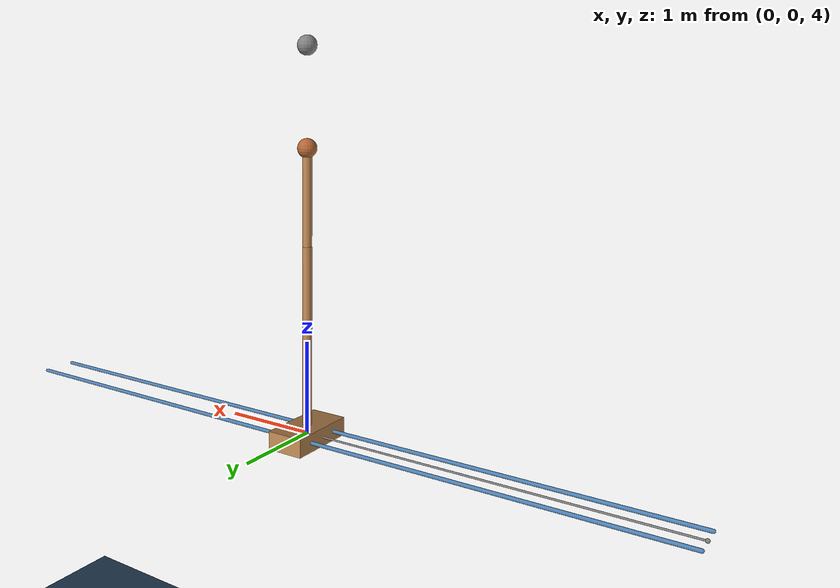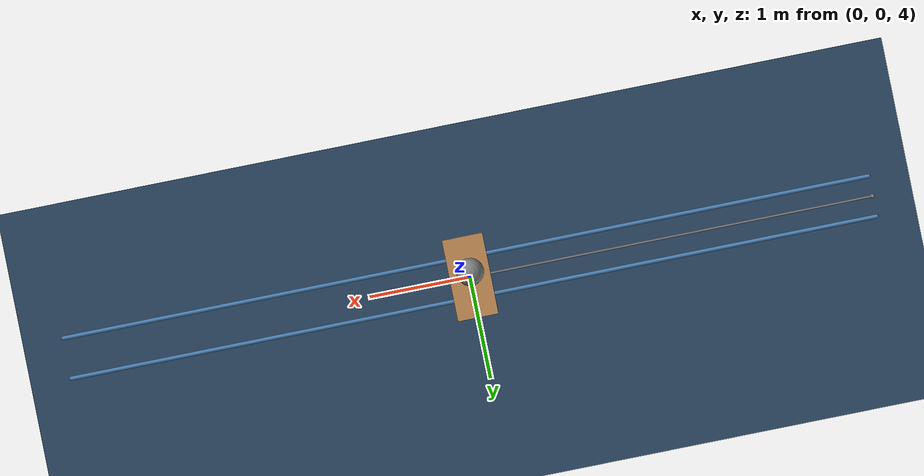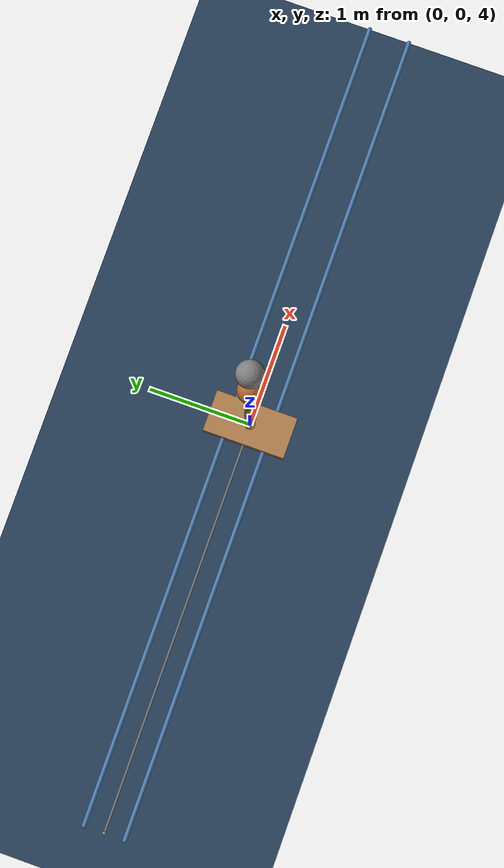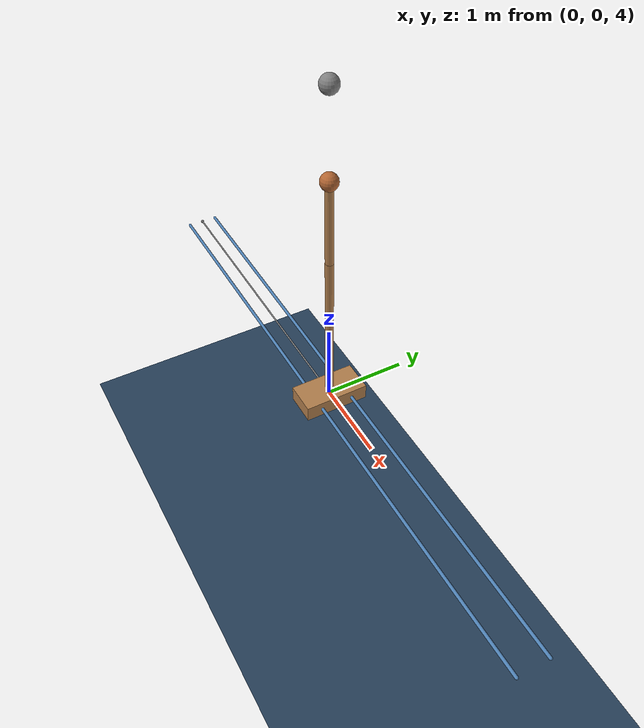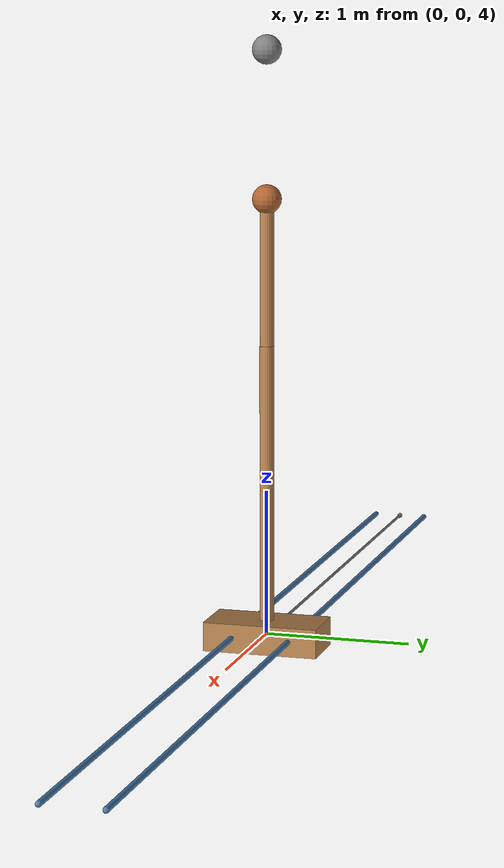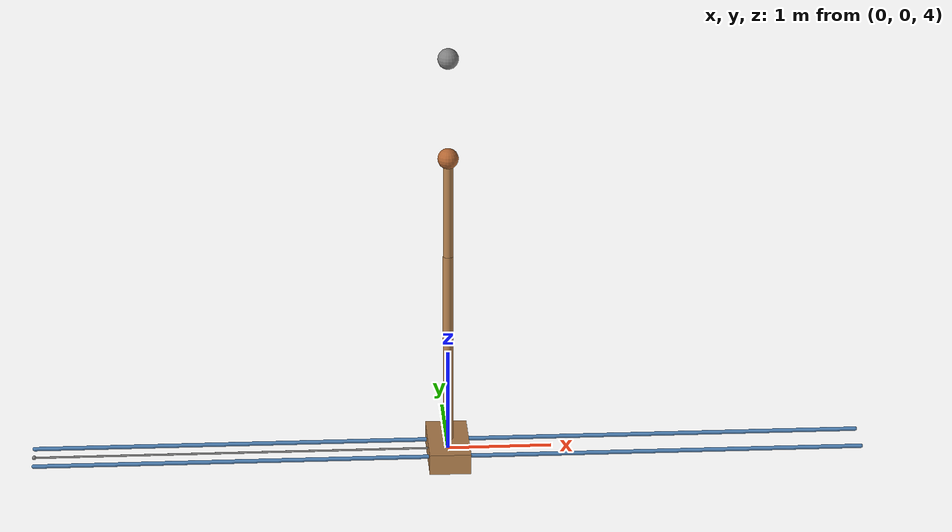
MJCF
<mujoco model="acroCart">
  <include file="./common/skybox.xml"/>
  <include file="./common/visual.xml"/>
  <include file="./common/materials.xml"/>

  <size njmax="50" nconmax="10" nstack="200"/>

  <option timestep="0.005" iterations="50" solver="Newton" tolerance="1e-10" integrator="RK4">
    <flag contact="disable" energy="enable" frictionloss="disable"/>
  </option>

  <default>
    <muscle ctrllimited="true" ctrlrange="0 1"/>
    <joint type="hinge" pos="0 0 0" axis="0 0 1" limited="false" damping="0"/>
  </default>
  <equality>
		<weld body1="mocap1" body2="cart" solimp="0.02 0.1 0.05" solref="0.06 1"></weld>
	</equality>

  <worldbody>
    <light name="light" pos="0 0 10"/>
    <camera name="fixed" pos="0 -4 1" zaxis="0 -1 0"/>
    <camera name="lookatcart" mode="targetbody" target="cart" pos="0 -2 2"/>
    <geom name="floor" pos="0 0 -.05" size="6 6 .2" type="plane" material="grid"/>
    <site name="s0" pos="0 0.2 4" size="0.02"/>
    <site name="s2" pos="-4 0 4" size="0.02"/>
    <geom name="rail1" type="capsule" pos="0  .2 4" zaxis="1 0 0" size="0.02 4" material="decoration" />
    <geom name="rail2" type="capsule" pos="0 -.2 4" zaxis="1 0 0" size="0.02 4" material="decoration" />
    <body name="mocap1" mocap="true" pos="0 0 8">
      <geom name="mocap" type="sphere" size="0.1" pos="0 0 0"/>
    </body>
    <body name="cart" pos="0 0 4">
      <joint name="slider" type="slide" limited="true" axis="1 0 0" range="-3.8 3.8" solreflimit="0 1" damping="0"/>
      <geom name="cart" type="box" size="0.2 0.4 0.1" material="self"  mass="2"/>
      <site name="s1" pos="0 0 0" size="0.02"/>
      <body name="upper_arm" pos="0 0 0">
        <joint name="shoulder" type="hinge" axis="0 1 0"/>
        <geom name="upper_arm_decoration" material="decoration" type="cylinder" fromto="0 -.06 0 0 .06 0" size="0.051" mass="0"/>
        <geom name="upper_arm" fromto="0 0 0 0 0 2" type="capsule" size="0.05" material="self"/>
        <body name="lower_arm" pos="0 0 2">
          <joint name="elbow" type="hinge" axis="0 1 0"/>
          <geom name="lower_arm" fromto="0 0 0 0 0 1" type="capsule" size="0.049" material="self"/>
          <geom name="mass" material="effector" type="sphere" pos="0 0 1" size="0.1" mass="3"/>
          <site name="tip" pos="0 0 1" size="0.1"/>
        </body>
     </body>
    </body>
  </worldbody>

  <tendon>
    <spatial name="slideIt" width="0.01">
        <site site="s1"/>
        <site site="s2"/>
    </spatial>
  </tendon>

  <actuator>
    <muscle name="slideIt" tendon="slideIt" lengthrange="0 8"/>
  </actuator>

</mujoco>

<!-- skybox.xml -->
<mujoco>
    <asset>
        <texture name="skybox" type="skybox" builtin="gradient" rgb1=".4 .6 .8" rgb2="0 0 0"
                 width="800" height="800" mark="random" markrgb="1 1 1"/>
    </asset>
  </mujoco>

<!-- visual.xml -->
<mujoco>
    <visual>
      <headlight ambient=".4 .4 .4" diffuse=".8 .8 .8" specular="0.1 0.1 0.1"/>
      <map znear=".01"/>
      <quality shadowsize="2048"/>
    </visual>
  </mujoco>

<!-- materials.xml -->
<!--
Common textures, colors and materials to be used throughout this suite. Some
materials such as xxx_highlight are activated on occurence of certain events,
for example receiving a positive reward.
-->
<mujoco>
    <asset>
      <texture name="grid" type="2d" builtin="checker" rgb1=".1 .2 .3" rgb2=".2 .3 .4" width="300" height="300" mark="edge" markrgb=".2 .3 .4"/>
      <material name="grid" texture="grid" texrepeat="1 1" texuniform="true" reflectance=".2"/>
      <material name="self" rgba=".7 .5 .3 1"/>
      <material name="self_default" rgba=".7 .5 .3 1"/>
      <material name="self_highlight" rgba="0 .5 .3 1"/>
      <material name="effector" rgba=".7 .4 .2 1"/>
      <material name="effector_default" rgba=".7 .4 .2 1"/>
      <material name="effector_highlight" rgba="0 .5 .3 1"/>
      <material name="decoration" rgba=".3 .5 .7 1"/>
      <material name="eye" rgba="0 .2 1 1"/>
      <material name="target" rgba=".6 .3 .3 1"/>
      <material name="target_default" rgba=".6 .3 .3 1"/>
      <material name="target_highlight" rgba=".6 .3 .3 .4"/>
      <material name="site" rgba=".5 .5 .5 .3"/>
    </asset>
  </mujoco>
